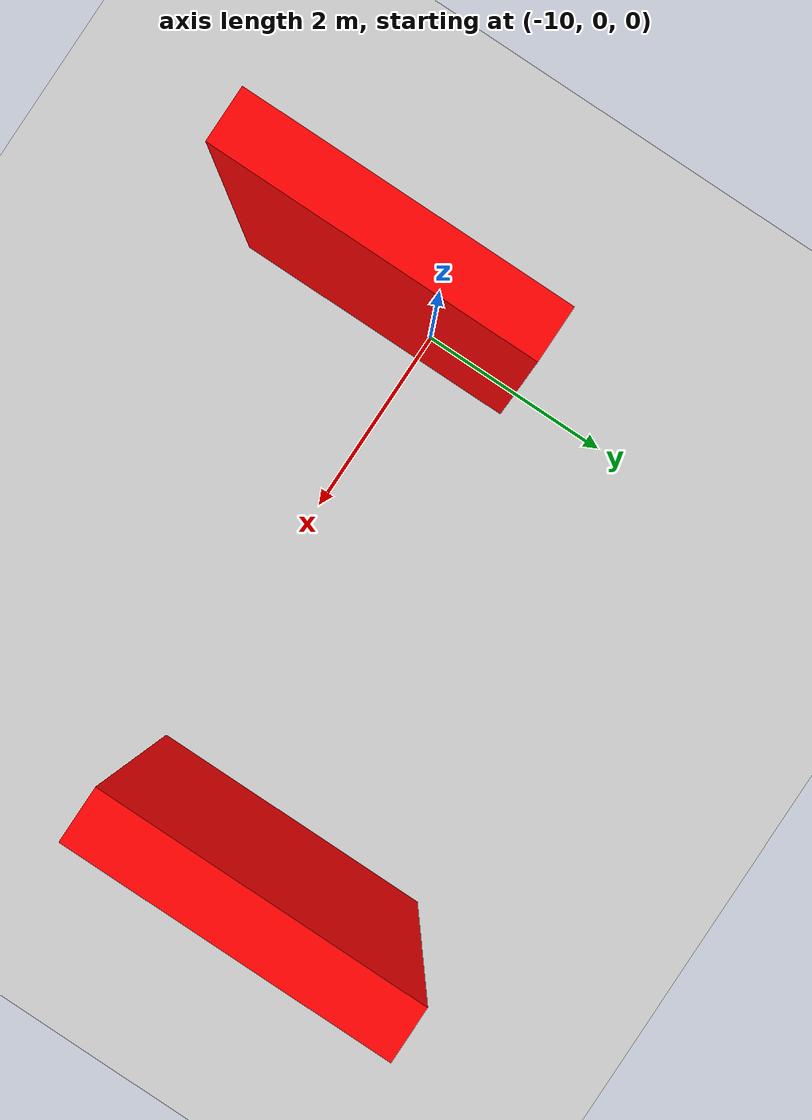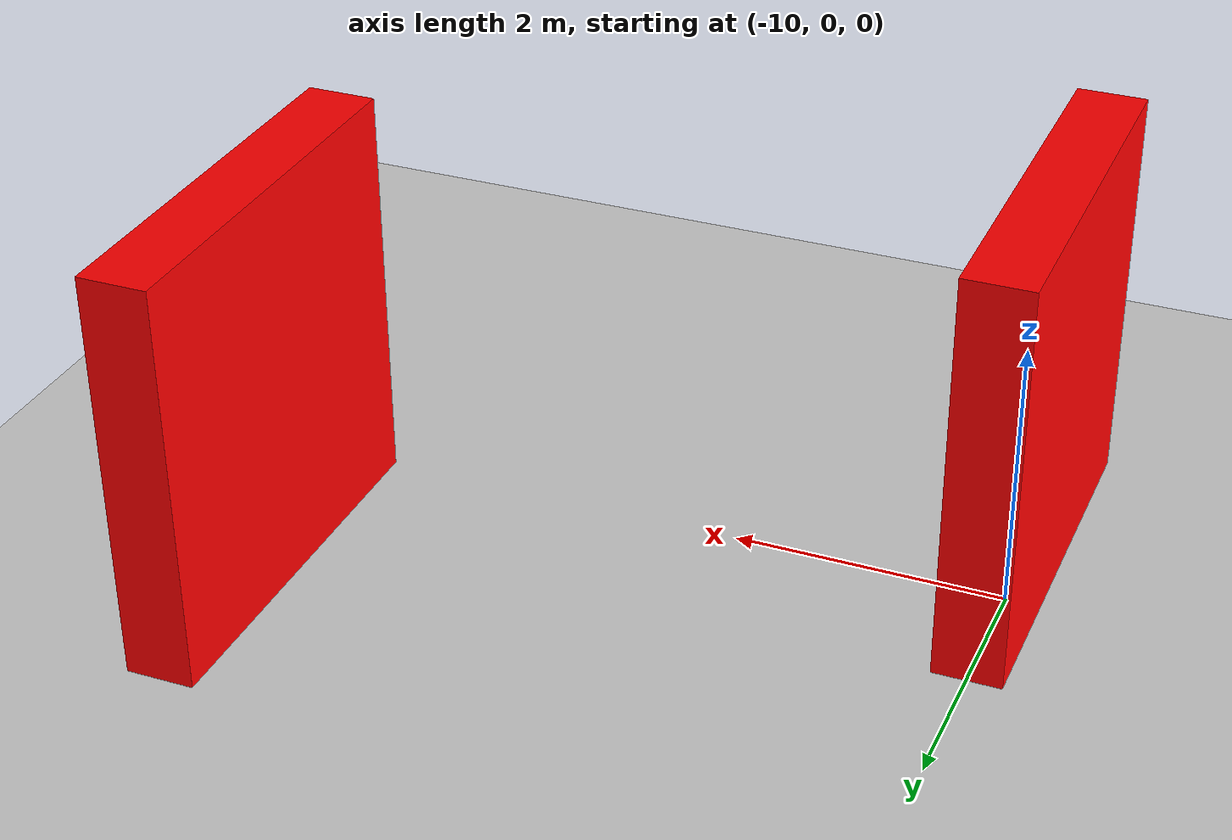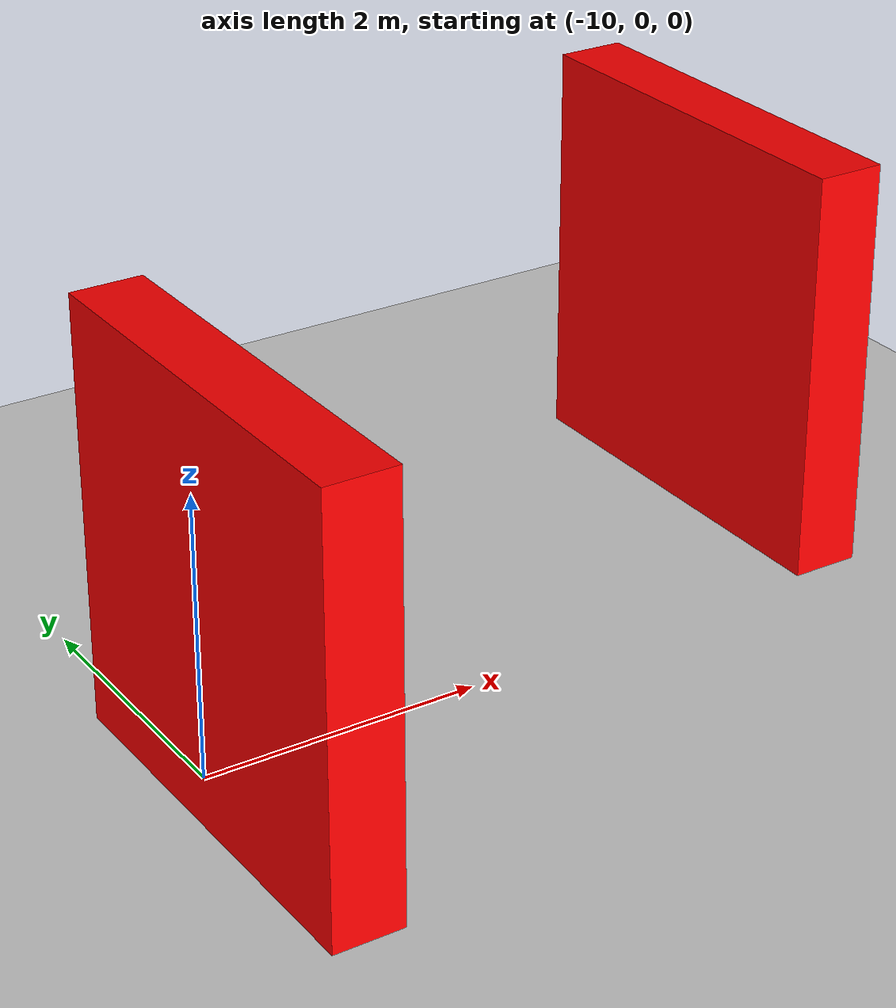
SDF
<?xml version="1.0" ?>
<sdf version="1.6">
  <world name="simple_obstacle_world">

    <include>
      <uri>model://sun</uri>
    </include>

    <include>
      <uri>model://ground_plane</uri>
    </include>

    <!-- Main obstacle in front of UAV -->
    <model name="red_obstacle">
      <static>true</static>
      <pose>-10 -0.5 1.5 0 0 0</pose>

      <link name="link">
        <collision name="collision">
          <geometry>
            <box>
              <size>0.5 3 3</size>
            </box>
          </geometry>
        </collision>

        <visual name="visual">
          <geometry>
            <box>
              <size>0.5 3 3</size>
            </box>
          </geometry>
          <material>
            <ambient>1 0 0 1</ambient>
            <diffuse>1 0 0 1</diffuse>
          </material>
        </visual>
      </link>
    </model>

    <model name="red_obstacle_2">
      <static>true</static>
      <pose>-5 1.5 1.5 0 0 0</pose>

      <link name="link">
        <collision name="collision">
          <geometry>
            <box>
              <size>0.5 3 3</size>
            </box>
          </geometry>
        </collision>

        <visual name="visual">
          <geometry>
            <box>
              <size>0.5 3 3</size>
            </box>
          </geometry>
          <material>
            <ambient>1 0 0 1</ambient>
            <diffuse>1 0 0 1</diffuse>
          </material>
        </visual>
      </link>
    </model>

  </world>
</sdf>
